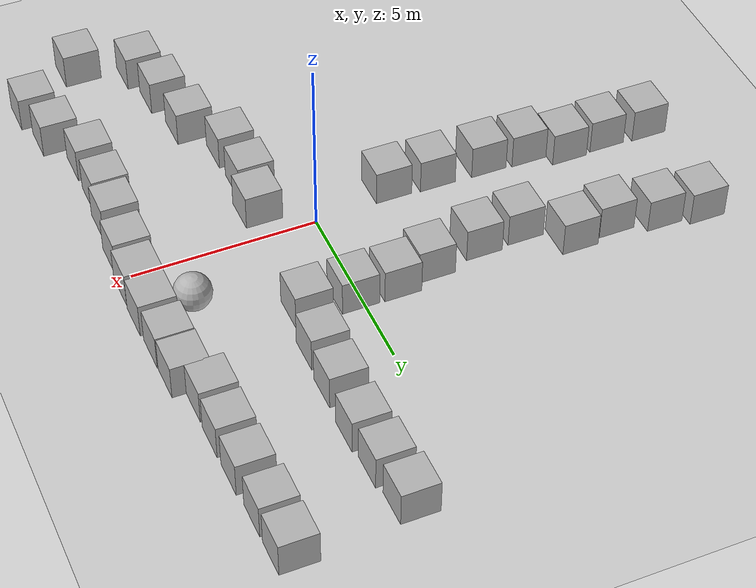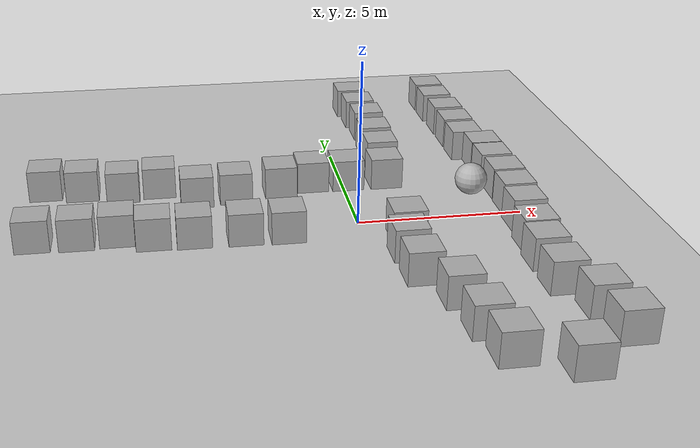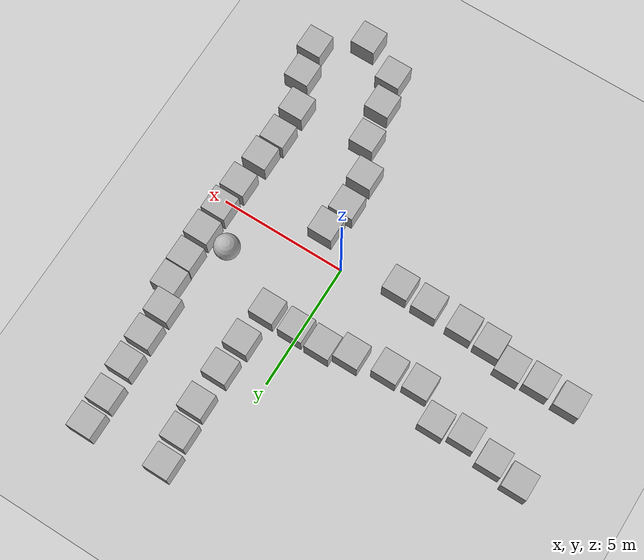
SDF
<sdf version='1.10'>
  <world name='hall'>
    <physics type='ode'>
      <max_step_size>0.0040000000000000001</max_step_size>
      <real_time_factor>1</real_time_factor>
      <real_time_update_rate>250</real_time_update_rate>
    </physics>
    <plugin name='gz::sim::systems::Physics' filename='gz-sim-physics-system'/>
    <plugin name='gz::sim::systems::UserCommands' filename='gz-sim-user-commands-system'/>
    <plugin name='gz::sim::systems::SceneBroadcaster' filename='gz-sim-scene-broadcaster-system'/>
    <plugin name='gz::sim::systems::Contact' filename='gz-sim-contact-system'/>
    <plugin name='gz::sim::systems::Imu' filename='gz-sim-imu-system'/>
    <plugin name='gz::sim::systems::AirPressure' filename='gz-sim-air-pressure-system'/>
    <plugin name='gz::sim::systems::ApplyLinkWrench' filename='gz-sim-apply-link-wrench-system'/>
    <plugin name='gz::sim::systems::Sensors' filename='gz-sim-sensors-system'>
      <render_engine>ogre2</render_engine>
    </plugin>
    <scene>
      <ambient>0.400000006 0.400000006 0.400000006 1</ambient>
      <background>0.699999988 0.699999988 0.699999988 1</background>
      <shadows>true</shadows>
    </scene>
    <gravity>0 0 -9.8000000000000007</gravity>
    <magnetic_field>5.5644999999999998e-06 2.2875799999999999e-05 -4.2388400000000002e-05</magnetic_field>
    <atmosphere type='adiabatic'/>
    <model name='ground_plane'>
      <static>true</static>
      <link name='link'>
        <collision name='collision'>
          <geometry>
            <plane>
              <normal>0 0 1</normal>
              <size>100 100</size>
            </plane>
          </geometry>
          <surface>
            <friction>
              <ode/>
            </friction>
            <bounce/>
            <contact/>
          </surface>
        </collision>
        <visual name='visual'>
          <geometry>
            <plane>
              <normal>0 0 1</normal>
              <size>100 100</size>
            </plane>
          </geometry>
          <material>
            <ambient>0.800000012 0.800000012 0.800000012 1</ambient>
            <diffuse>0.800000012 0.800000012 0.800000012 1</diffuse>
            <specular>0.800000012 0.800000012 0.800000012 1</specular>
          </material>
        </visual>
        <pose>0 0 0 0 0 0</pose>
        <inertial>
          <pose>0 0 0 0 0 0</pose>
          <mass>1</mass>
          <inertia>
            <ixx>1</ixx>
            <ixy>0</ixy>
            <ixz>0</ixz>
            <iyy>1</iyy>
            <iyz>0</iyz>
            <izz>1</izz>
          </inertia>
        </inertial>
        <enable_wind>false</enable_wind>
      </link>
      <pose>0 0 0 0 0 0</pose>
      <self_collide>false</self_collide>
    </model>
    <model name='box'>
      <pose>-9.3009059653600481 3.3272991361466069 0.5 0 0 0</pose>
      <link name='box_link'>
        <inertial>
          <inertia>
            <ixx>0.16666</ixx>
            <ixy>0</ixy>
            <ixz>0</ixz>
            <iyy>0.16666</iyy>
            <iyz>0</iyz>
            <izz>0.16666</izz>
          </inertia>
          <mass>1</mass>
          <pose>0 0 0 0 0 0</pose>
        </inertial>
        <collision name='box_collision'>
          <geometry>
            <box>
              <size>1 1 1</size>
            </box>
          </geometry>
          <surface>
            <friction>
              <ode/>
            </friction>
            <bounce/>
            <contact/>
          </surface>
        </collision>
        <visual name='box_visual'>
          <geometry>
            <box>
              <size>1 1 1</size>
            </box>
          </geometry>
          <material>
            <ambient>0.300000012 0.300000012 0.300000012 1</ambient>
            <diffuse>0.699999988 0.699999988 0.699999988 1</diffuse>
            <specular>1 1 1 1</specular>
          </material>
        </visual>
        <pose>0 0 0 0 0 0</pose>
        <enable_wind>false</enable_wind>
      </link>
      <static>false</static>
      <self_collide>false</self_collide>
    </model>
    <model name='box_0'>
      <pose>-8.1704742717233199 3.1304198664884266 0.5 0 0 0</pose>
      <link name='box_link'>
        <inertial>
          <inertia>
            <ixx>0.16666</ixx>
            <ixy>0</ixy>
            <ixz>0</ixz>
            <iyy>0.16666</iyy>
            <iyz>0</iyz>
            <izz>0.16666</izz>
          </inertia>
          <mass>1</mass>
          <pose>0 0 0 0 0 0</pose>
        </inertial>
        <collision name='box_collision'>
          <geometry>
            <box>
              <size>1 1 1</size>
            </box>
          </geometry>
          <surface>
            <friction>
              <ode/>
            </friction>
            <bounce/>
            <contact/>
          </surface>
        </collision>
        <visual name='box_visual'>
          <geometry>
            <box>
              <size>1 1 1</size>
            </box>
          </geometry>
          <material>
            <ambient>0.300000012 0.300000012 0.300000012 1</ambient>
            <diffuse>0.699999988 0.699999988 0.699999988 1</diffuse>
            <specular>1 1 1 1</specular>
          </material>
        </visual>
        <pose>0 0 0 0 0 0</pose>
        <enable_wind>false</enable_wind>
      </link>
      <static>false</static>
      <self_collide>false</self_collide>
    </model>
    <model name='box_1'>
      <pose>-6.9216264541641301 2.8620365181429297 0.5 0 0 0</pose>
      <link name='box_link'>
        <inertial>
          <inertia>
            <ixx>0.16666</ixx>
            <ixy>0</ixy>
            <ixz>0</ixz>
            <iyy>0.16666</iyy>
            <iyz>0</iyz>
            <izz>0.16666</izz>
          </inertia>
          <mass>1</mass>
          <pose>0 0 0 0 0 0</pose>
        </inertial>
        <collision name='box_collision'>
          <geometry>
            <box>
              <size>1 1 1</size>
            </box>
          </geometry>
          <surface>
            <friction>
              <ode/>
            </friction>
            <bounce/>
            <contact/>
          </surface>
        </collision>
        <visual name='box_visual'>
          <geometry>
            <box>
              <size>1 1 1</size>
            </box>
          </geometry>
          <material>
            <ambient>0.300000012 0.300000012 0.300000012 1</ambient>
            <diffuse>0.699999988 0.699999988 0.699999988 1</diffuse>
            <specular>1 1 1 1</specular>
          </material>
        </visual>
        <pose>0 0 0 0 0 0</pose>
        <enable_wind>false</enable_wind>
      </link>
      <static>false</static>
      <self_collide>false</self_collide>
    </model>
    <model name='box_2'>
      <pose>-9.4294856413285846 -0.068469532880000239 0.5 0 0 0</pose>
      <link name='box_link'>
        <inertial>
          <inertia>
            <ixx>0.16666</ixx>
            <ixy>0</ixy>
            <ixz>0</ixz>
            <iyy>0.16666</iyy>
            <iyz>0</iyz>
            <izz>0.16666</izz>
          </inertia>
          <mass>1</mass>
          <pose>0 0 0 0 0 0</pose>
        </inertial>
        <collision name='box_collision'>
          <geometry>
            <box>
              <size>1 1 1</size>
            </box>
          </geometry>
          <surface>
            <friction>
              <ode/>
            </friction>
            <bounce/>
            <contact/>
          </surface>
        </collision>
        <visual name='box_visual'>
          <geometry>
            <box>
              <size>1 1 1</size>
            </box>
          </geometry>
          <material>
            <ambient>0.300000012 0.300000012 0.300000012 1</ambient>
            <diffuse>0.699999988 0.699999988 0.699999988 1</diffuse>
            <specular>1 1 1 1</specular>
          </material>
        </visual>
        <pose>0 0 0 0 0 0</pose>
        <enable_wind>false</enable_wind>
      </link>
      <static>false</static>
      <self_collide>false</self_collide>
    </model>
    <model name='box_3'>
      <pose>-8.1960336305993557 -0.11720611513607881 0.5 0 0 0</pose>
      <link name='box_link'>
        <inertial>
          <inertia>
            <ixx>0.16666</ixx>
            <ixy>0</ixy>
            <ixz>0</ixz>
            <iyy>0.16666</iyy>
            <iyz>0</iyz>
            <izz>0.16666</izz>
          </inertia>
          <mass>1</mass>
          <pose>0 0 0 0 0 0</pose>
        </inertial>
        <collision name='box_collision'>
          <geometry>
            <box>
              <size>1 1 1</size>
            </box>
          </geometry>
          <surface>
            <friction>
              <ode/>
            </friction>
            <bounce/>
            <contact/>
          </surface>
        </collision>
        <visual name='box_visual'>
          <geometry>
            <box>
              <size>1 1 1</size>
            </box>
          </geometry>
          <material>
            <ambient>0.300000012 0.300000012 0.300000012 1</ambient>
            <diffuse>0.699999988 0.699999988 0.699999988 1</diffuse>
            <specular>1 1 1 1</specular>
          </material>
        </visual>
        <pose>0 0 0 0 0 0</pose>
        <enable_wind>false</enable_wind>
      </link>
      <static>false</static>
      <self_collide>false</self_collide>
    </model>
    <model name='box_4'>
      <pose>-7.0585950905511234 -0.054278778083886356 0.5 0 0 0</pose>
      <link name='box_link'>
        <inertial>
          <inertia>
            <ixx>0.16666</ixx>
            <ixy>0</ixy>
            <ixz>0</ixz>
            <iyy>0.16666</iyy>
            <iyz>0</iyz>
            <izz>0.16666</izz>
          </inertia>
          <mass>1</mass>
          <pose>0 0 0 0 0 0</pose>
        </inertial>
        <collision name='box_collision'>
          <geometry>
            <box>
              <size>1 1 1</size>
            </box>
          </geometry>
          <surface>
            <friction>
              <ode/>
            </friction>
            <bounce/>
            <contact/>
          </surface>
        </collision>
        <visual name='box_visual'>
          <geometry>
            <box>
              <size>1 1 1</size>
            </box>
          </geometry>
          <material>
            <ambient>0.300000012 0.300000012 0.300000012 1</ambient>
            <diffuse>0.699999988 0.699999988 0.699999988 1</diffuse>
            <specular>1 1 1 1</specular>
          </material>
        </visual>
        <pose>0 0 0 0 0 0</pose>
        <enable_wind>false</enable_wind>
      </link>
      <static>false</static>
      <self_collide>false</self_collide>
    </model>
    <model name='box_5'>
      <pose>-5.7995724388907783 3.0348943386143459 0.5 0 0 0</pose>
      <link name='box_link'>
        <inertial>
          <inertia>
            <ixx>0.16666</ixx>
            <ixy>0</ixy>
            <ixz>0</ixz>
            <iyy>0.16666</iyy>
            <iyz>0</iyz>
            <izz>0.16666</izz>
          </inertia>
          <mass>1</mass>
          <pose>0 0 0 0 0 0</pose>
        </inertial>
        <collision name='box_collision'>
          <geometry>
            <box>
              <size>1 1 1</size>
            </box>
          </geometry>
          <surface>
            <friction>
              <ode/>
            </friction>
            <bounce/>
            <contact/>
          </surface>
        </collision>
        <visual name='box_visual'>
          <geometry>
            <box>
              <size>1 1 1</size>
            </box>
          </geometry>
          <material>
            <ambient>0.300000012 0.300000012 0.300000012 1</ambient>
            <diffuse>0.699999988 0.699999988 0.699999988 1</diffuse>
            <specular>1 1 1 1</specular>
          </material>
        </visual>
        <pose>0 0 0 0 0 0</pose>
        <enable_wind>false</enable_wind>
      </link>
      <static>false</static>
      <self_collide>false</self_collide>
    </model>
    <model name='box_6'>
      <pose>-4.6676061172982539 2.188147360891425 0.5 0 0 0</pose>
      <link name='box_link'>
        <inertial>
          <inertia>
            <ixx>0.16666</ixx>
            <ixy>0</ixy>
            <ixz>0</ixz>
            <iyy>0.16666</iyy>
            <iyz>0</iyz>
            <izz>0.16666</izz>
          </inertia>
          <mass>1</mass>
          <pose>0 0 0 0 0 0</pose>
        </inertial>
        <collision name='box_collision'>
          <geometry>
            <box>
              <size>1 1 1</size>
            </box>
          </geometry>
          <surface>
            <friction>
              <ode/>
            </friction>
            <bounce/>
            <contact/>
          </surface>
        </collision>
        <visual name='box_visual'>
          <geometry>
            <box>
              <size>1 1 1</size>
            </box>
          </geometry>
          <material>
            <ambient>0.300000012 0.300000012 0.300000012 1</ambient>
            <diffuse>0.699999988 0.699999988 0.699999988 1</diffuse>
            <specular>1 1 1 1</specular>
          </material>
        </visual>
        <pose>0 0 0 0 0 0</pose>
        <enable_wind>false</enable_wind>
      </link>
      <static>false</static>
      <self_collide>false</self_collide>
    </model>
    <model name='box_7'>
      <pose>-6.0358827470732059 -0.40438552153248253 0.5 0 0 0</pose>
      <link name='box_link'>
        <inertial>
          <inertia>
            <ixx>0.16666</ixx>
            <ixy>0</ixy>
            <ixz>0</ixz>
            <iyy>0.16666</iyy>
            <iyz>0</iyz>
            <izz>0.16666</izz>
          </inertia>
          <mass>1</mass>
          <pose>0 0 0 0 0 0</pose>
        </inertial>
        <collision name='box_collision'>
          <geometry>
            <box>
              <size>1 1 1</size>
            </box>
          </geometry>
          <surface>
            <friction>
              <ode/>
            </friction>
            <bounce/>
            <contact/>
          </surface>
        </collision>
        <visual name='box_visual'>
          <geometry>
            <box>
              <size>1 1 1</size>
            </box>
          </geometry>
          <material>
            <ambient>0.300000012 0.300000012 0.300000012 1</ambient>
            <diffuse>0.699999988 0.699999988 0.699999988 1</diffuse>
            <specular>1 1 1 1</specular>
          </material>
        </visual>
        <pose>0 0 0 0 0 0</pose>
        <enable_wind>false</enable_wind>
      </link>
      <static>false</static>
      <self_collide>false</self_collide>
    </model>
    <model name='box_8'>
      <pose>-4.8845188174228094 -0.44569819567022406 0.5 0 0 0</pose>
      <link name='box_link'>
        <inertial>
          <inertia>
            <ixx>0.16666</ixx>
            <ixy>0</ixy>
            <ixz>0</ixz>
            <iyy>0.16666</iyy>
            <iyz>0</iyz>
            <izz>0.16666</izz>
          </inertia>
          <mass>1</mass>
          <pose>0 0 0 0 0 0</pose>
        </inertial>
        <collision name='box_collision'>
          <geometry>
            <box>
              <size>1 1 1</size>
            </box>
          </geometry>
          <surface>
            <friction>
              <ode/>
            </friction>
            <bounce/>
            <contact/>
          </surface>
        </collision>
        <visual name='box_visual'>
          <geometry>
            <box>
              <size>1 1 1</size>
            </box>
          </geometry>
          <material>
            <ambient>0.300000012 0.300000012 0.300000012 1</ambient>
            <diffuse>0.699999988 0.699999988 0.699999988 1</diffuse>
            <specular>1 1 1 1</specular>
          </material>
        </visual>
        <pose>0 0 0 0 0 0</pose>
        <enable_wind>false</enable_wind>
      </link>
      <static>false</static>
      <self_collide>false</self_collide>
    </model>
    <model name='box_9'>
      <pose>-3.4648157210277803 2.2769229862144327 0.5 0 0 0</pose>
      <link name='box_link'>
        <inertial>
          <inertia>
            <ixx>0.16666</ixx>
            <ixy>0</ixy>
            <ixz>0</ixz>
            <iyy>0.16666</iyy>
            <iyz>0</iyz>
            <izz>0.16666</izz>
          </inertia>
          <mass>1</mass>
          <pose>0 0 0 0 0 0</pose>
        </inertial>
        <collision name='box_collision'>
          <geometry>
            <box>
              <size>1 1 1</size>
            </box>
          </geometry>
          <surface>
            <friction>
              <ode/>
            </friction>
            <bounce/>
            <contact/>
          </surface>
        </collision>
        <visual name='box_visual'>
          <geometry>
            <box>
              <size>1 1 1</size>
            </box>
          </geometry>
          <material>
            <ambient>0.300000012 0.300000012 0.300000012 1</ambient>
            <diffuse>0.699999988 0.699999988 0.699999988 1</diffuse>
            <specular>1 1 1 1</specular>
          </material>
        </visual>
        <pose>0 0 0 0 0 0</pose>
        <enable_wind>false</enable_wind>
      </link>
      <static>false</static>
      <self_collide>false</self_collide>
    </model>
    <model name='box_10'>
      <pose>-3.426743394056424 -0.47712993274420862 0.5 0 0 0</pose>
      <link name='box_link'>
        <inertial>
          <inertia>
            <ixx>0.16666</ixx>
            <ixy>0</ixy>
            <ixz>0</ixz>
            <iyy>0.16666</iyy>
            <iyz>0</iyz>
            <izz>0.16666</izz>
          </inertia>
          <mass>1</mass>
          <pose>0 0 0 0 0 0</pose>
        </inertial>
        <collision name='box_collision'>
          <geometry>
            <box>
              <size>1 1 1</size>
            </box>
          </geometry>
          <surface>
            <friction>
              <ode/>
            </friction>
            <bounce/>
            <contact/>
          </surface>
        </collision>
        <visual name='box_visual'>
          <geometry>
            <box>
              <size>1 1 1</size>
            </box>
          </geometry>
          <material>
            <ambient>0.300000012 0.300000012 0.300000012 1</ambient>
            <diffuse>0.699999988 0.699999988 0.699999988 1</diffuse>
            <specular>1 1 1 1</specular>
          </material>
        </visual>
        <pose>0 0 0 0 0 0</pose>
        <enable_wind>false</enable_wind>
      </link>
      <static>false</static>
      <self_collide>false</self_collide>
    </model>
    <model name='box_11'>
      <pose>-2.0378301289286398 2.5326498483623161 0.5 0 0 0</pose>
      <link name='box_link'>
        <inertial>
          <inertia>
            <ixx>0.16666</ixx>
            <ixy>0</ixy>
            <ixz>0</ixz>
            <iyy>0.16666</iyy>
            <iyz>0</iyz>
            <izz>0.16666</izz>
          </inertia>
          <mass>1</mass>
          <pose>0 0 0 0 0 0</pose>
        </inertial>
        <collision name='box_collision'>
          <geometry>
            <box>
              <size>1 1 1</size>
            </box>
          </geometry>
          <surface>
            <friction>
              <ode/>
            </friction>
            <bounce/>
            <contact/>
          </surface>
        </collision>
        <visual name='box_visual'>
          <geometry>
            <box>
              <size>1 1 1</size>
            </box>
          </geometry>
          <material>
            <ambient>0.300000012 0.300000012 0.300000012 1</ambient>
            <diffuse>0.699999988 0.699999988 0.699999988 1</diffuse>
            <specular>1 1 1 1</specular>
          </material>
        </visual>
        <pose>0 0 0 0 0 0</pose>
        <enable_wind>false</enable_wind>
      </link>
      <static>false</static>
      <self_collide>false</self_collide>
    </model>
    <model name='box_12'>
      <pose>-2.1981612049026715 -0.52094339732169925 0.5 0 0 0</pose>
      <link name='box_link'>
        <inertial>
          <inertia>
            <ixx>0.16666</ixx>
            <ixy>0</ixy>
            <ixz>0</ixz>
            <iyy>0.16666</iyy>
            <iyz>0</iyz>
            <izz>0.16666</izz>
          </inertia>
          <mass>1</mass>
          <pose>0 0 0 0 0 0</pose>
        </inertial>
        <collision name='box_collision'>
          <geometry>
            <box>
              <size>1 1 1</size>
            </box>
          </geometry>
          <surface>
            <friction>
              <ode/>
            </friction>
            <bounce/>
            <contact/>
          </surface>
        </collision>
        <visual name='box_visual'>
          <geometry>
            <box>
              <size>1 1 1</size>
            </box>
          </geometry>
          <material>
            <ambient>0.300000012 0.300000012 0.300000012 1</ambient>
            <diffuse>0.699999988 0.699999988 0.699999988 1</diffuse>
            <specular>1 1 1 1</specular>
          </material>
        </visual>
        <pose>0 0 0 0 0 0</pose>
        <enable_wind>false</enable_wind>
      </link>
      <static>false</static>
      <self_collide>false</self_collide>
    </model>
    <model name='box_13'>
      <pose>-0.9991369826805836 2.7862371712394189 0.5 0 0 0</pose>
      <link name='box_link'>
        <inertial>
          <inertia>
            <ixx>0.16666</ixx>
            <ixy>0</ixy>
            <ixz>0</ixz>
            <iyy>0.16666</iyy>
            <iyz>0</iyz>
            <izz>0.16666</izz>
          </inertia>
          <mass>1</mass>
          <pose>0 0 0 0 0 0</pose>
        </inertial>
        <collision name='box_collision'>
          <geometry>
            <box>
              <size>1 1 1</size>
            </box>
          </geometry>
          <surface>
            <friction>
              <ode/>
            </friction>
            <bounce/>
            <contact/>
          </surface>
        </collision>
        <visual name='box_visual'>
          <geometry>
            <box>
              <size>1 1 1</size>
            </box>
          </geometry>
          <material>
            <ambient>0.300000012 0.300000012 0.300000012 1</ambient>
            <diffuse>0.699999988 0.699999988 0.699999988 1</diffuse>
            <specular>1 1 1 1</specular>
          </material>
        </visual>
        <pose>0 0 0 0 0 0</pose>
        <enable_wind>false</enable_wind>
      </link>
      <static>false</static>
      <self_collide>false</self_collide>
    </model>
    <model name='box_14'>
      <pose>0.12834287610651662 2.7628927013440832 0.5 0 0 0</pose>
      <link name='box_link'>
        <inertial>
          <inertia>
            <ixx>0.16666</ixx>
            <ixy>0</ixy>
            <ixz>0</ixz>
            <iyy>0.16666</iyy>
            <iyz>0</iyz>
            <izz>0.16666</izz>
          </inertia>
          <mass>1</mass>
          <pose>0 0 0 0 0 0</pose>
        </inertial>
        <collision name='box_collision'>
          <geometry>
            <box>
              <size>1 1 1</size>
            </box>
          </geometry>
          <surface>
            <friction>
              <ode/>
            </friction>
            <bounce/>
            <contact/>
          </surface>
        </collision>
        <visual name='box_visual'>
          <geometry>
            <box>
              <size>1 1 1</size>
            </box>
          </geometry>
          <material>
            <ambient>0.300000012 0.300000012 0.300000012 1</ambient>
            <diffuse>0.699999988 0.699999988 0.699999988 1</diffuse>
            <specular>1 1 1 1</specular>
          </material>
        </visual>
        <pose>0 0 0 0 0 0</pose>
        <enable_wind>false</enable_wind>
      </link>
      <static>false</static>
      <self_collide>false</self_collide>
    </model>
    <model name='box_15'>
      <pose>1.357521249469622 2.7439947124267379 0.5 0 0 0</pose>
      <link name='box_link'>
        <inertial>
          <inertia>
            <ixx>0.16666</ixx>
            <ixy>0</ixy>
            <ixz>0</ixz>
            <iyy>0.16666</iyy>
            <iyz>0</iyz>
            <izz>0.16666</izz>
          </inertia>
          <mass>1</mass>
          <pose>0 0 0 0 0 0</pose>
        </inertial>
        <collision name='box_collision'>
          <geometry>
            <box>
              <size>1 1 1</size>
            </box>
          </geometry>
          <surface>
            <friction>
              <ode/>
            </friction>
            <bounce/>
            <contact/>
          </surface>
        </collision>
        <visual name='box_visual'>
          <geometry>
            <box>
              <size>1 1 1</size>
            </box>
          </geometry>
          <material>
            <ambient>0.300000012 0.300000012 0.300000012 1</ambient>
            <diffuse>0.699999988 0.699999988 0.699999988 1</diffuse>
            <specular>1 1 1 1</specular>
          </material>
        </visual>
        <pose>0 0 0 0 0 0</pose>
        <enable_wind>false</enable_wind>
      </link>
      <static>false</static>
      <self_collide>false</self_collide>
    </model>
    <model name='box_19'>
      <pose>4.912303690393677 2.6602600990334349 0.5 0 0 0</pose>
      <link name='box_link'>
        <inertial>
          <inertia>
            <ixx>0.16666</ixx>
            <ixy>0</ixy>
            <ixz>0</ixz>
            <iyy>0.16666</iyy>
            <iyz>0</iyz>
            <izz>0.16666</izz>
          </inertia>
          <mass>1</mass>
          <pose>0 0 0 0 0 0</pose>
        </inertial>
        <collision name='box_collision'>
          <geometry>
            <box>
              <size>1 1 1</size>
            </box>
          </geometry>
          <surface>
            <friction>
              <ode/>
            </friction>
            <bounce/>
            <contact/>
          </surface>
        </collision>
        <visual name='box_visual'>
          <geometry>
            <box>
              <size>1 1 1</size>
            </box>
          </geometry>
          <material>
            <ambient>0.300000012 0.300000012 0.300000012 1</ambient>
            <diffuse>0.699999988 0.699999988 0.699999988 1</diffuse>
            <specular>1 1 1 1</specular>
          </material>
        </visual>
        <pose>0 0 0 0 0 0</pose>
        <enable_wind>false</enable_wind>
      </link>
      <static>false</static>
      <self_collide>false</self_collide>
    </model>
    <model name='box_20'>
      <pose>4.9465980579168312 1.5093543128711715 0.5 0 0 0</pose>
      <link name='box_link'>
        <inertial>
          <inertia>
            <ixx>0.16666</ixx>
            <ixy>0</ixy>
            <ixz>0</ixz>
            <iyy>0.16666</iyy>
            <iyz>0</iyz>
            <izz>0.16666</izz>
          </inertia>
          <mass>1</mass>
          <pose>0 0 0 0 0 0</pose>
        </inertial>
        <collision name='box_collision'>
          <geometry>
            <box>
              <size>1 1 1</size>
            </box>
          </geometry>
          <surface>
            <friction>
              <ode/>
            </friction>
            <bounce/>
            <contact/>
          </surface>
        </collision>
        <visual name='box_visual'>
          <geometry>
            <box>
              <size>1 1 1</size>
            </box>
          </geometry>
          <material>
            <ambient>0.300000012 0.300000012 0.300000012 1</ambient>
            <diffuse>0.699999988 0.699999988 0.699999988 1</diffuse>
            <specular>1 1 1 1</specular>
          </material>
        </visual>
        <pose>0 0 0 0 0 0</pose>
        <enable_wind>false</enable_wind>
      </link>
      <static>false</static>
      <self_collide>false</self_collide>
    </model>
    <model name='box_21'>
      <pose>4.9244203993902396 0.40247502403358271 0.5 0 0 0</pose>
      <link name='box_link'>
        <inertial>
          <inertia>
            <ixx>0.16666</ixx>
            <ixy>0</ixy>
            <ixz>0</ixz>
            <iyy>0.16666</iyy>
            <iyz>0</iyz>
            <izz>0.16666</izz>
          </inertia>
          <mass>1</mass>
          <pose>0 0 0 0 0 0</pose>
        </inertial>
        <collision name='box_collision'>
          <geometry>
            <box>
              <size>1 1 1</size>
            </box>
          </geometry>
          <surface>
            <friction>
              <ode/>
            </friction>
            <bounce/>
            <contact/>
          </surface>
        </collision>
        <visual name='box_visual'>
          <geometry>
            <box>
              <size>1 1 1</size>
            </box>
          </geometry>
          <material>
            <ambient>0.300000012 0.300000012 0.300000012 1</ambient>
            <diffuse>0.699999988 0.699999988 0.699999988 1</diffuse>
            <specular>1 1 1 1</specular>
          </material>
        </visual>
        <pose>0 0 0 0 0 0</pose>
        <enable_wind>false</enable_wind>
      </link>
      <static>false</static>
      <self_collide>false</self_collide>
    </model>
    <model name='box_22'>
      <pose>4.9019861459947416 3.6960917747802084 0.5 0 0 0</pose>
      <link name='box_link'>
        <inertial>
          <inertia>
            <ixx>0.16666</ixx>
            <ixy>0</ixy>
            <ixz>0</ixz>
            <iyy>0.16666</iyy>
            <iyz>0</iyz>
            <izz>0.16666</izz>
          </inertia>
          <mass>1</mass>
          <pose>0 0 0 0 0 0</pose>
        </inertial>
        <collision name='box_collision'>
          <geometry>
            <box>
              <size>1 1 1</size>
            </box>
          </geometry>
          <surface>
            <friction>
              <ode/>
            </friction>
            <bounce/>
            <contact/>
          </surface>
        </collision>
        <visual name='box_visual'>
          <geometry>
            <box>
              <size>1 1 1</size>
            </box>
          </geometry>
          <material>
            <ambient>0.300000012 0.300000012 0.300000012 1</ambient>
            <diffuse>0.699999988 0.699999988 0.699999988 1</diffuse>
            <specular>1 1 1 1</specular>
          </material>
        </visual>
        <pose>0 0 0 0 0 0</pose>
        <enable_wind>false</enable_wind>
      </link>
      <static>false</static>
      <self_collide>false</self_collide>
    </model>
    <model name='box_23'>
      <pose>4.5432989194355571 4.670223322701081 0.5 0 0 0</pose>
      <link name='box_link'>
        <inertial>
          <inertia>
            <ixx>0.16666</ixx>
            <ixy>0</ixy>
            <ixz>0</ixz>
            <iyy>0.16666</iyy>
            <iyz>0</iyz>
            <izz>0.16666</izz>
          </inertia>
          <mass>1</mass>
          <pose>0 0 0 0 0 0</pose>
        </inertial>
        <collision name='box_collision'>
          <geometry>
            <box>
              <size>1 1 1</size>
            </box>
          </geometry>
          <surface>
            <friction>
              <ode/>
            </friction>
            <bounce/>
            <contact/>
          </surface>
        </collision>
        <visual name='box_visual'>
          <geometry>
            <box>
              <size>1 1 1</size>
            </box>
          </geometry>
          <material>
            <ambient>0.300000012 0.300000012 0.300000012 1</ambient>
            <diffuse>0.699999988 0.699999988 0.699999988 1</diffuse>
            <specular>1 1 1 1</specular>
          </material>
        </visual>
        <pose>0 0 0 0 0 0</pose>
        <enable_wind>false</enable_wind>
      </link>
      <static>false</static>
      <self_collide>false</self_collide>
    </model>
    <model name='box_24'>
      <pose>1.5195533986669516 4.1737916536588555 0.5 0 0 0</pose>
      <link name='box_link'>
        <inertial>
          <inertia>
            <ixx>0.16666</ixx>
            <ixy>0</ixy>
            <ixz>0</ixz>
            <iyy>0.16666</iyy>
            <iyz>0</iyz>
            <izz>0.16666</izz>
          </inertia>
          <mass>1</mass>
          <pose>0 0 0 0 0 0</pose>
        </inertial>
        <collision name='box_collision'>
          <geometry>
            <box>
              <size>1 1 1</size>
            </box>
          </geometry>
          <surface>
            <friction>
              <ode/>
            </friction>
            <bounce/>
            <contact/>
          </surface>
        </collision>
        <visual name='box_visual'>
          <geometry>
            <box>
              <size>1 1 1</size>
            </box>
          </geometry>
          <material>
            <ambient>0.300000012 0.300000012 0.300000012 1</ambient>
            <diffuse>0.699999988 0.699999988 0.699999988 1</diffuse>
            <specular>1 1 1 1</specular>
          </material>
        </visual>
        <pose>0 0 0 0 0 0</pose>
        <enable_wind>false</enable_wind>
      </link>
      <static>false</static>
      <self_collide>false</self_collide>
    </model>
    <model name='box_25'>
      <pose>1.5780333590634641 5.4428053848851503 0.5 0 0 0</pose>
      <link name='box_link'>
        <inertial>
          <inertia>
            <ixx>0.16666</ixx>
            <ixy>0</ixy>
            <ixz>0</ixz>
            <iyy>0.16666</iyy>
            <iyz>0</iyz>
            <izz>0.16666</izz>
          </inertia>
          <mass>1</mass>
          <pose>0 0 0 0 0 0</pose>
        </inertial>
        <collision name='box_collision'>
          <geometry>
            <box>
              <size>1 1 1</size>
            </box>
          </geometry>
          <surface>
            <friction>
              <ode/>
            </friction>
            <bounce/>
            <contact/>
          </surface>
        </collision>
        <visual name='box_visual'>
          <geometry>
            <box>
              <size>1 1 1</size>
            </box>
          </geometry>
          <material>
            <ambient>0.300000012 0.300000012 0.300000012 1</ambient>
            <diffuse>0.699999988 0.699999988 0.699999988 1</diffuse>
            <specular>1 1 1 1</specular>
          </material>
        </visual>
        <pose>0 0 0 0 0 0</pose>
        <enable_wind>false</enable_wind>
      </link>
      <static>false</static>
      <self_collide>false</self_collide>
    </model>
    <model name='box_26'>
      <pose>4.5531113738764253 5.8300274433760739 0.5 0 0 0</pose>
      <link name='box_link'>
        <inertial>
          <inertia>
            <ixx>0.16666</ixx>
            <ixy>0</ixy>
            <ixz>0</ixz>
            <iyy>0.16666</iyy>
            <iyz>0</iyz>
            <izz>0.16666</izz>
          </inertia>
          <mass>1</mass>
          <pose>0 0 0 0 0 0</pose>
        </inertial>
        <collision name='box_collision'>
          <geometry>
            <box>
              <size>1 1 1</size>
            </box>
          </geometry>
          <surface>
            <friction>
              <ode/>
            </friction>
            <bounce/>
            <contact/>
          </surface>
        </collision>
        <visual name='box_visual'>
          <geometry>
            <box>
              <size>1 1 1</size>
            </box>
          </geometry>
          <material>
            <ambient>0.300000012 0.300000012 0.300000012 1</ambient>
            <diffuse>0.699999988 0.699999988 0.699999988 1</diffuse>
            <specular>1 1 1 1</specular>
          </material>
        </visual>
        <pose>0 0 0 0 0 0</pose>
        <enable_wind>false</enable_wind>
      </link>
      <static>false</static>
      <self_collide>false</self_collide>
    </model>
    <model name='box_27'>
      <pose>1.6168736083181261 6.8937482452424161 0.5 0 0 0</pose>
      <link name='box_link'>
        <inertial>
          <inertia>
            <ixx>0.16666</ixx>
            <ixy>0</ixy>
            <ixz>0</ixz>
            <iyy>0.16666</iyy>
            <iyz>0</iyz>
            <izz>0.16666</izz>
          </inertia>
          <mass>1</mass>
          <pose>0 0 0 0 0 0</pose>
        </inertial>
        <collision name='box_collision'>
          <geometry>
            <box>
              <size>1 1 1</size>
            </box>
          </geometry>
          <surface>
            <friction>
              <ode/>
            </friction>
            <bounce/>
            <contact/>
          </surface>
        </collision>
        <visual name='box_visual'>
          <geometry>
            <box>
              <size>1 1 1</size>
            </box>
          </geometry>
          <material>
            <ambient>0.300000012 0.300000012 0.300000012 1</ambient>
            <diffuse>0.699999988 0.699999988 0.699999988 1</diffuse>
            <specular>1 1 1 1</specular>
          </material>
        </visual>
        <pose>0 0 0 0 0 0</pose>
        <enable_wind>false</enable_wind>
      </link>
      <static>false</static>
      <self_collide>false</self_collide>
    </model>
    <model name='box_28'>
      <pose>4.5370655887450173 7.0335654478190266 0.5 0 0 0</pose>
      <link name='box_link'>
        <inertial>
          <inertia>
            <ixx>0.16666</ixx>
            <ixy>0</ixy>
            <ixz>0</ixz>
            <iyy>0.16666</iyy>
            <iyz>0</iyz>
            <izz>0.16666</izz>
          </inertia>
          <mass>1</mass>
          <pose>0 0 0 0 0 0</pose>
        </inertial>
        <collision name='box_collision'>
          <geometry>
            <box>
              <size>1 1 1</size>
            </box>
          </geometry>
          <surface>
            <friction>
              <ode/>
            </friction>
            <bounce/>
            <contact/>
          </surface>
        </collision>
        <visual name='box_visual'>
          <geometry>
            <box>
              <size>1 1 1</size>
            </box>
          </geometry>
          <material>
            <ambient>0.300000012 0.300000012 0.300000012 1</ambient>
            <diffuse>0.699999988 0.699999988 0.699999988 1</diffuse>
            <specular>1 1 1 1</specular>
          </material>
        </visual>
        <pose>0 0 0 0 0 0</pose>
        <enable_wind>false</enable_wind>
      </link>
      <static>false</static>
      <self_collide>false</self_collide>
    </model>
    <model name='box_29'>
      <pose>4.8440275100222401 -0.71597424073421911 0.5 0 0 0</pose>
      <link name='box_link'>
        <inertial>
          <inertia>
            <ixx>0.16666</ixx>
            <ixy>0</ixy>
            <ixz>0</ixz>
            <iyy>0.16666</iyy>
            <iyz>0</iyz>
            <izz>0.16666</izz>
          </inertia>
          <mass>1</mass>
          <pose>0 0 0 0 0 0</pose>
        </inertial>
        <collision name='box_collision'>
          <geometry>
            <box>
              <size>1 1 1</size>
            </box>
          </geometry>
          <surface>
            <friction>
              <ode/>
            </friction>
            <bounce/>
            <contact/>
          </surface>
        </collision>
        <visual name='box_visual'>
          <geometry>
            <box>
              <size>1 1 1</size>
            </box>
          </geometry>
          <material>
            <ambient>0.300000012 0.300000012 0.300000012 1</ambient>
            <diffuse>0.699999988 0.699999988 0.699999988 1</diffuse>
            <specular>1 1 1 1</specular>
          </material>
        </visual>
        <pose>0 0 0 0 0 0</pose>
        <enable_wind>false</enable_wind>
      </link>
      <static>false</static>
      <self_collide>false</self_collide>
    </model>
    <model name='box_30'>
      <pose>4.7271397270088018 -2.0027999142005153 0.5 0 0 0</pose>
      <link name='box_link'>
        <inertial>
          <inertia>
            <ixx>0.16666</ixx>
            <ixy>0</ixy>
            <ixz>0</ixz>
            <iyy>0.16666</iyy>
            <iyz>0</iyz>
            <izz>0.16666</izz>
          </inertia>
          <mass>1</mass>
          <pose>0 0 0 0 0 0</pose>
        </inertial>
        <collision name='box_collision'>
          <geometry>
            <box>
              <size>1 1 1</size>
            </box>
          </geometry>
          <surface>
            <friction>
              <ode/>
            </friction>
            <bounce/>
            <contact/>
          </surface>
        </collision>
        <visual name='box_visual'>
          <geometry>
            <box>
              <size>1 1 1</size>
            </box>
          </geometry>
          <material>
            <ambient>0.300000012 0.300000012 0.300000012 1</ambient>
            <diffuse>0.699999988 0.699999988 0.699999988 1</diffuse>
            <specular>1 1 1 1</specular>
          </material>
        </visual>
        <pose>0 0 0 0 0 0</pose>
        <enable_wind>false</enable_wind>
      </link>
      <static>false</static>
      <self_collide>false</self_collide>
    </model>
    <model name='box_31'>
      <pose>1.2258267405134005 -0.98288495393256148 0.5 0 0 0</pose>
      <link name='box_link'>
        <inertial>
          <inertia>
            <ixx>0.16666</ixx>
            <ixy>0</ixy>
            <ixz>0</ixz>
            <iyy>0.16666</iyy>
            <iyz>0</iyz>
            <izz>0.16666</izz>
          </inertia>
          <mass>1</mass>
          <pose>0 0 0 0 0 0</pose>
        </inertial>
        <collision name='box_collision'>
          <geometry>
            <box>
              <size>1 1 1</size>
            </box>
          </geometry>
          <surface>
            <friction>
              <ode/>
            </friction>
            <bounce/>
            <contact/>
          </surface>
        </collision>
        <visual name='box_visual'>
          <geometry>
            <box>
              <size>1 1 1</size>
            </box>
          </geometry>
          <material>
            <ambient>0.300000012 0.300000012 0.300000012 1</ambient>
            <diffuse>0.699999988 0.699999988 0.699999988 1</diffuse>
            <specular>1 1 1 1</specular>
          </material>
        </visual>
        <pose>0 0 0 0 0 0</pose>
        <enable_wind>false</enable_wind>
      </link>
      <static>false</static>
      <self_collide>false</self_collide>
    </model>
    <model name='sphere'>
      <pose>3.8956104783682877 1.5509536581597503 0.5 0 0 0</pose>
      <link name='sphere_link'>
        <inertial>
          <inertia>
            <ixx>0.10000000000000001</ixx>
            <ixy>0</ixy>
            <ixz>0</ixz>
            <iyy>0.10000000000000001</iyy>
            <iyz>0</iyz>
            <izz>0.10000000000000001</izz>
          </inertia>
          <mass>1</mass>
          <pose>0 0 0 0 0 0</pose>
        </inertial>
        <collision name='sphere_collision'>
          <geometry>
            <sphere>
              <radius>0.5</radius>
            </sphere>
          </geometry>
          <surface>
            <friction>
              <ode/>
            </friction>
            <bounce/>
            <contact/>
          </surface>
        </collision>
        <visual name='sphere_visual'>
          <geometry>
            <sphere>
              <radius>0.5</radius>
            </sphere>
          </geometry>
          <material>
            <ambient>0.300000012 0.300000012 0.300000012 1</ambient>
            <diffuse>0.699999988 0.699999988 0.699999988 1</diffuse>
            <specular>1 1 1 1</specular>
          </material>
        </visual>
        <pose>0 0 0 0 0 0</pose>
        <enable_wind>false</enable_wind>
      </link>
      <static>false</static>
      <self_collide>false</self_collide>
    </model>
    <model name='box_32'>
      <pose>4.6344313213445147 -3.062703162378853 0.5 0 0 0</pose>
      <link name='box_link'>
        <inertial>
          <inertia>
            <ixx>0.16666</ixx>
            <ixy>0</ixy>
            <ixz>0</ixz>
            <iyy>0.16666</iyy>
            <iyz>0</iyz>
            <izz>0.16666</izz>
          </inertia>
          <mass>1</mass>
          <pose>0 0 0 0 0 0</pose>
        </inertial>
        <collision name='box_collision'>
          <geometry>
            <box>
              <size>1 1 1</size>
            </box>
          </geometry>
          <surface>
            <friction>
              <ode/>
            </friction>
            <bounce/>
            <contact/>
          </surface>
        </collision>
        <visual name='box_visual'>
          <geometry>
            <box>
              <size>1 1 1</size>
            </box>
          </geometry>
          <material>
            <ambient>0.300000012 0.300000012 0.300000012 1</ambient>
            <diffuse>0.699999988 0.699999988 0.699999988 1</diffuse>
            <specular>1 1 1 1</specular>
          </material>
        </visual>
        <pose>0 0 0 0 0 0</pose>
        <enable_wind>false</enable_wind>
      </link>
      <static>false</static>
      <self_collide>false</self_collide>
    </model>
    <model name='box_33'>
      <pose>1.0214267002010353 -2.075577074910036 0.5 0 0 0</pose>
      <link name='box_link'>
        <inertial>
          <inertia>
            <ixx>0.16666</ixx>
            <ixy>0</ixy>
            <ixz>0</ixz>
            <iyy>0.16666</iyy>
            <iyz>0</iyz>
            <izz>0.16666</izz>
          </inertia>
          <mass>1</mass>
          <pose>0 0 0 0 0 0</pose>
        </inertial>
        <collision name='box_collision'>
          <geometry>
            <box>
              <size>1 1 1</size>
            </box>
          </geometry>
          <surface>
            <friction>
              <ode/>
            </friction>
            <bounce/>
            <contact/>
          </surface>
        </collision>
        <visual name='box_visual'>
          <geometry>
            <box>
              <size>1 1 1</size>
            </box>
          </geometry>
          <material>
            <ambient>0.300000012 0.300000012 0.300000012 1</ambient>
            <diffuse>0.699999988 0.699999988 0.699999988 1</diffuse>
            <specular>1 1 1 1</specular>
          </material>
        </visual>
        <pose>0 0 0 0 0 0</pose>
        <enable_wind>false</enable_wind>
      </link>
      <static>false</static>
      <self_collide>false</self_collide>
    </model>
    <model name='box_34'>
      <pose>1.073450106312587 -3.3781119662497225 0.5 0 0 0</pose>
      <link name='box_link'>
        <inertial>
          <inertia>
            <ixx>0.16666</ixx>
            <ixy>0</ixy>
            <ixz>0</ixz>
            <iyy>0.16666</iyy>
            <iyz>0</iyz>
            <izz>0.16666</izz>
          </inertia>
          <mass>1</mass>
          <pose>0 0 0 0 0 0</pose>
        </inertial>
        <collision name='box_collision'>
          <geometry>
            <box>
              <size>1 1 1</size>
            </box>
          </geometry>
          <surface>
            <friction>
              <ode/>
            </friction>
            <bounce/>
            <contact/>
          </surface>
        </collision>
        <visual name='box_visual'>
          <geometry>
            <box>
              <size>1 1 1</size>
            </box>
          </geometry>
          <material>
            <ambient>0.300000012 0.300000012 0.300000012 1</ambient>
            <diffuse>0.699999988 0.699999988 0.699999988 1</diffuse>
            <specular>1 1 1 1</specular>
          </material>
        </visual>
        <pose>0 0 0 0 0 0</pose>
        <enable_wind>false</enable_wind>
      </link>
      <static>false</static>
      <self_collide>false</self_collide>
    </model>
    <model name='box_35'>
      <pose>1.7681142763852193 -4.6765986119853773 0.5 0 0 0</pose>
      <link name='box_link'>
        <inertial>
          <inertia>
            <ixx>0.16666</ixx>
            <ixy>0</ixy>
            <ixz>0</ixz>
            <iyy>0.16666</iyy>
            <iyz>0</iyz>
            <izz>0.16666</izz>
          </inertia>
          <mass>1</mass>
          <pose>0 0 0 0 0 0</pose>
        </inertial>
        <collision name='box_collision'>
          <geometry>
            <box>
              <size>1 1 1</size>
            </box>
          </geometry>
          <surface>
            <friction>
              <ode/>
            </friction>
            <bounce/>
            <contact/>
          </surface>
        </collision>
        <visual name='box_visual'>
          <geometry>
            <box>
              <size>1 1 1</size>
            </box>
          </geometry>
          <material>
            <ambient>0.300000012 0.300000012 0.300000012 1</ambient>
            <diffuse>0.699999988 0.699999988 0.699999988 1</diffuse>
            <specular>1 1 1 1</specular>
          </material>
        </visual>
        <pose>0 0 0 0 0 0</pose>
        <enable_wind>false</enable_wind>
      </link>
      <static>false</static>
      <self_collide>false</self_collide>
    </model>
    <model name='box_36'>
      <pose>4.6421519946933847 -4.3636668329109325 0.5 0 0 0</pose>
      <link name='box_link'>
        <inertial>
          <inertia>
            <ixx>0.16666</ixx>
            <ixy>0</ixy>
            <ixz>0</ixz>
            <iyy>0.16666</iyy>
            <iyz>0</iyz>
            <izz>0.16666</izz>
          </inertia>
          <mass>1</mass>
          <pose>0 0 0 0 0 0</pose>
        </inertial>
        <collision name='box_collision'>
          <geometry>
            <box>
              <size>1 1 1</size>
            </box>
          </geometry>
          <surface>
            <friction>
              <ode/>
            </friction>
            <bounce/>
            <contact/>
          </surface>
        </collision>
        <visual name='box_visual'>
          <geometry>
            <box>
              <size>1 1 1</size>
            </box>
          </geometry>
          <material>
            <ambient>0.300000012 0.300000012 0.300000012 1</ambient>
            <diffuse>0.699999988 0.699999988 0.699999988 1</diffuse>
            <specular>1 1 1 1</specular>
          </material>
        </visual>
        <pose>0 0 0 0 0 0</pose>
        <enable_wind>false</enable_wind>
      </link>
      <static>false</static>
      <self_collide>false</self_collide>
    </model>
    <model name='box_37'>
      <pose>5.198393204855158 -5.6308044771188595 0.5 0 0 0</pose>
      <link name='box_link'>
        <inertial>
          <inertia>
            <ixx>0.16666</ixx>
            <ixy>0</ixy>
            <ixz>0</ixz>
            <iyy>0.16666</iyy>
            <iyz>0</iyz>
            <izz>0.16666</izz>
          </inertia>
          <mass>1</mass>
          <pose>0 0 0 0 0 0</pose>
        </inertial>
        <collision name='box_collision'>
          <geometry>
            <box>
              <size>1 1 1</size>
            </box>
          </geometry>
          <surface>
            <friction>
              <ode/>
            </friction>
            <bounce/>
            <contact/>
          </surface>
        </collision>
        <visual name='box_visual'>
          <geometry>
            <box>
              <size>1 1 1</size>
            </box>
          </geometry>
          <material>
            <ambient>0.300000012 0.300000012 0.300000012 1</ambient>
            <diffuse>0.699999988 0.699999988 0.699999988 1</diffuse>
            <specular>1 1 1 1</specular>
          </material>
        </visual>
        <pose>0 0 0 0 0 0</pose>
        <enable_wind>false</enable_wind>
      </link>
      <static>false</static>
      <self_collide>false</self_collide>
    </model>
    <model name='box_38'>
      <pose>2.0023688379215043 -6.1328349962742967 0.5 0 0 0</pose>
      <link name='box_link'>
        <inertial>
          <inertia>
            <ixx>0.16666</ixx>
            <ixy>0</ixy>
            <ixz>0</ixz>
            <iyy>0.16666</iyy>
            <iyz>0</iyz>
            <izz>0.16666</izz>
          </inertia>
          <mass>1</mass>
          <pose>0 0 0 0 0 0</pose>
        </inertial>
        <collision name='box_collision'>
          <geometry>
            <box>
              <size>1 1 1</size>
            </box>
          </geometry>
          <surface>
            <friction>
              <ode/>
            </friction>
            <bounce/>
            <contact/>
          </surface>
        </collision>
        <visual name='box_visual'>
          <geometry>
            <box>
              <size>1 1 1</size>
            </box>
          </geometry>
          <material>
            <ambient>0.300000012 0.300000012 0.300000012 1</ambient>
            <diffuse>0.699999988 0.699999988 0.699999988 1</diffuse>
            <specular>1 1 1 1</specular>
          </material>
        </visual>
        <pose>0 0 0 0 0 0</pose>
        <enable_wind>false</enable_wind>
      </link>
      <static>false</static>
      <self_collide>false</self_collide>
    </model>
    <model name='box_39'>
      <pose>5.4299214092089194 -6.861705544023347 0.5 0 0 0</pose>
      <link name='box_link'>
        <inertial>
          <inertia>
            <ixx>0.16666</ixx>
            <ixy>0</ixy>
            <ixz>0</ixz>
            <iyy>0.16666</iyy>
            <iyz>0</iyz>
            <izz>0.16666</izz>
          </inertia>
          <mass>1</mass>
          <pose>0 0 0 0 0 0</pose>
        </inertial>
        <collision name='box_collision'>
          <geometry>
            <box>
              <size>1 1 1</size>
            </box>
          </geometry>
          <surface>
            <friction>
              <ode/>
            </friction>
            <bounce/>
            <contact/>
          </surface>
        </collision>
        <visual name='box_visual'>
          <geometry>
            <box>
              <size>1 1 1</size>
            </box>
          </geometry>
          <material>
            <ambient>0.300000012 0.300000012 0.300000012 1</ambient>
            <diffuse>0.699999988 0.699999988 0.699999988 1</diffuse>
            <specular>1 1 1 1</specular>
          </material>
        </visual>
        <pose>0 0 0 0 0 0</pose>
        <enable_wind>false</enable_wind>
      </link>
      <static>false</static>
      <self_collide>false</self_collide>
    </model>
    <model name='box_40'>
      <pose>2.2696997980899978 -7.3349491855826976 0.5 0 0 0</pose>
      <link name='box_link'>
        <inertial>
          <inertia>
            <ixx>0.16666</ixx>
            <ixy>0</ixy>
            <ixz>0</ixz>
            <iyy>0.16666</iyy>
            <iyz>0</iyz>
            <izz>0.16666</izz>
          </inertia>
          <mass>1</mass>
          <pose>0 0 0 0 0 0</pose>
        </inertial>
        <collision name='box_collision'>
          <geometry>
            <box>
              <size>1 1 1</size>
            </box>
          </geometry>
          <surface>
            <friction>
              <ode/>
            </friction>
            <bounce/>
            <contact/>
          </surface>
        </collision>
        <visual name='box_visual'>
          <geometry>
            <box>
              <size>1 1 1</size>
            </box>
          </geometry>
          <material>
            <ambient>0.300000012 0.300000012 0.300000012 1</ambient>
            <diffuse>0.699999988 0.699999988 0.699999988 1</diffuse>
            <specular>1 1 1 1</specular>
          </material>
        </visual>
        <pose>0 0 0 0 0 0</pose>
        <enable_wind>false</enable_wind>
      </link>
      <static>false</static>
      <self_collide>false</self_collide>
    </model>
    <model name='box_41'>
      <pose>4.4716209825989184 8.3462115035447404 0.5 0 0 0</pose>
      <link name='box_link'>
        <inertial>
          <inertia>
            <ixx>0.16666</ixx>
            <ixy>0</ixy>
            <ixz>0</ixz>
            <iyy>0.16666</iyy>
            <iyz>0</iyz>
            <izz>0.16666</izz>
          </inertia>
          <mass>1</mass>
          <pose>0 0 0 0 0 0</pose>
        </inertial>
        <collision name='box_collision'>
          <geometry>
            <box>
              <size>1 1 1</size>
            </box>
          </geometry>
          <surface>
            <friction>
              <ode/>
            </friction>
            <bounce/>
            <contact/>
          </surface>
        </collision>
        <visual name='box_visual'>
          <geometry>
            <box>
              <size>1 1 1</size>
            </box>
          </geometry>
          <material>
            <ambient>0.300000012 0.300000012 0.300000012 1</ambient>
            <diffuse>0.699999988 0.699999988 0.699999988 1</diffuse>
            <specular>1 1 1 1</specular>
          </material>
        </visual>
        <pose>0 0 0 0 0 0</pose>
        <enable_wind>false</enable_wind>
      </link>
      <static>false</static>
      <self_collide>false</self_collide>
    </model>
    <model name='box_42'>
      <pose>1.5341715409625027 8.0810163997644953 0.5 0 0 0</pose>
      <link name='box_link'>
        <inertial>
          <inertia>
            <ixx>0.16666</ixx>
            <ixy>0</ixy>
            <ixz>0</ixz>
            <iyy>0.16666</iyy>
            <iyz>0</iyz>
            <izz>0.16666</izz>
          </inertia>
          <mass>1</mass>
          <pose>0 0 0 0 0 0</pose>
        </inertial>
        <collision name='box_collision'>
          <geometry>
            <box>
              <size>1 1 1</size>
            </box>
          </geometry>
          <surface>
            <friction>
              <ode/>
            </friction>
            <bounce/>
            <contact/>
          </surface>
        </collision>
        <visual name='box_visual'>
          <geometry>
            <box>
              <size>1 1 1</size>
            </box>
          </geometry>
          <material>
            <ambient>0.300000012 0.300000012 0.300000012 1</ambient>
            <diffuse>0.699999988 0.699999988 0.699999988 1</diffuse>
            <specular>1 1 1 1</specular>
          </material>
        </visual>
        <pose>0 0 0 0 0 0</pose>
        <enable_wind>false</enable_wind>
      </link>
      <static>false</static>
      <self_collide>false</self_collide>
    </model>
    <model name='box_43'>
      <pose>4.4633998967843436 9.4930577295357121 0.5 0 0 0</pose>
      <link name='box_link'>
        <inertial>
          <inertia>
            <ixx>0.16666</ixx>
            <ixy>0</ixy>
            <ixz>0</ixz>
            <iyy>0.16666</iyy>
            <iyz>0</iyz>
            <izz>0.16666</izz>
          </inertia>
          <mass>1</mass>
          <pose>0 0 0 0 0 0</pose>
        </inertial>
        <collision name='box_collision'>
          <geometry>
            <box>
              <size>1 1 1</size>
            </box>
          </geometry>
          <surface>
            <friction>
              <ode/>
            </friction>
            <bounce/>
            <contact/>
          </surface>
        </collision>
        <visual name='box_visual'>
          <geometry>
            <box>
              <size>1 1 1</size>
            </box>
          </geometry>
          <material>
            <ambient>0.300000012 0.300000012 0.300000012 1</ambient>
            <diffuse>0.699999988 0.699999988 0.699999988 1</diffuse>
            <specular>1 1 1 1</specular>
          </material>
        </visual>
        <pose>0 0 0 0 0 0</pose>
        <enable_wind>false</enable_wind>
      </link>
      <static>false</static>
      <self_collide>false</self_collide>
    </model>
    <model name='box_44'>
      <pose>1.4286081963495616 9.2581095222362091 0.5 0 0 0</pose>
      <link name='box_link'>
        <inertial>
          <inertia>
            <ixx>0.16666</ixx>
            <ixy>0</ixy>
            <ixz>0</ixz>
            <iyy>0.16666</iyy>
            <iyz>0</iyz>
            <izz>0.16666</izz>
          </inertia>
          <mass>1</mass>
          <pose>0 0 0 0 0 0</pose>
        </inertial>
        <collision name='box_collision'>
          <geometry>
            <box>
              <size>1 1 1</size>
            </box>
          </geometry>
          <surface>
            <friction>
              <ode/>
            </friction>
            <bounce/>
            <contact/>
          </surface>
        </collision>
        <visual name='box_visual'>
          <geometry>
            <box>
              <size>1 1 1</size>
            </box>
          </geometry>
          <material>
            <ambient>0.300000012 0.300000012 0.300000012 1</ambient>
            <diffuse>0.699999988 0.699999988 0.699999988 1</diffuse>
            <specular>1 1 1 1</specular>
          </material>
        </visual>
        <pose>0 0 0 0 0 0</pose>
        <enable_wind>false</enable_wind>
      </link>
      <static>false</static>
      <self_collide>false</self_collide>
    </model>
    <model name='box_45'>
      <pose>3.7960979663956 -8.0842664151868373 0.5 0 0 0</pose>
      <link name='box_link'>
        <inertial>
          <inertia>
            <ixx>0.16666</ixx>
            <ixy>0</ixy>
            <ixz>0</ixz>
            <iyy>0.16666</iyy>
            <iyz>0</iyz>
            <izz>0.16666</izz>
          </inertia>
          <mass>1</mass>
          <pose>0 0 0 0 0 0</pose>
        </inertial>
        <collision name='box_collision'>
          <geometry>
            <box>
              <size>1 1 1</size>
            </box>
          </geometry>
          <surface>
            <friction>
              <ode/>
            </friction>
            <bounce/>
            <contact/>
          </surface>
        </collision>
        <visual name='box_visual'>
          <geometry>
            <box>
              <size>1 1 1</size>
            </box>
          </geometry>
          <material>
            <ambient>0.300000012 0.300000012 0.300000012 1</ambient>
            <diffuse>0.699999988 0.699999988 0.699999988 1</diffuse>
            <specular>1 1 1 1</specular>
          </material>
        </visual>
        <pose>0 0 0 0 0 0</pose>
        <enable_wind>false</enable_wind>
      </link>
      <static>false</static>
      <self_collide>false</self_collide>
    </model>
    <light name='sun' type='directional'>
      <pose>0 0 10 0 0 0</pose>
      <cast_shadows>true</cast_shadows>
      <intensity>1</intensity>
      <direction>-0.5 0.10000000000000001 -0.90000000000000002</direction>
      <diffuse>0.800000012 0.800000012 0.800000012 1</diffuse>
      <specular>0.200000003 0.200000003 0.200000003 1</specular>
      <attenuation>
        <range>1000</range>
        <linear>0.01</linear>
        <constant>0.90000000000000002</constant>
        <quadratic>0.001</quadratic>
      </attenuation>
      <spot>
        <inner_angle>0</inner_angle>
        <outer_angle>0</outer_angle>
        <falloff>0</falloff>
      </spot>
    </light>
  </world>
</sdf>
